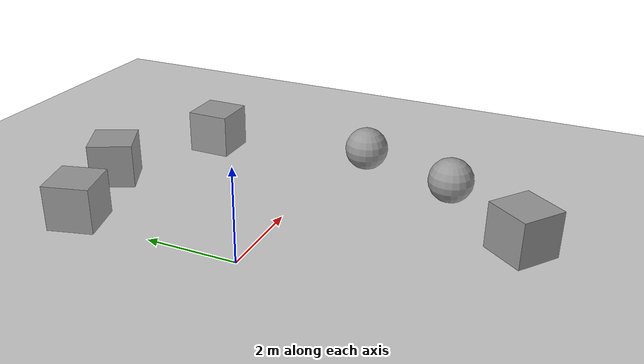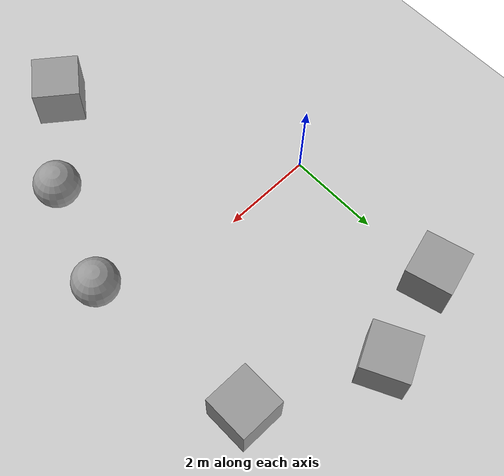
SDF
<sdf version="1.7">
 <world name="default">
  <scene><ambient>0.4 0.4 0.4 1</ambient><background>0.7 0.7 0.7 1</background><shadows>1</shadows></scene>
  <light name="sun" type="directional">
   <pose>0 0 10 0 -0 0</pose>
   <diffuse>0.8 0.8 0.8 1</diffuse>
   <specular>0.2 0.2 0.2 1</specular>
   <attenuation>
    <range>1000</range>
    <constant>0.9</constant>
    <linear>0.01</linear>
    <quadratic>0.001</quadratic>
   </attenuation>
   <direction>-0.5 0.1 -0.9</direction>
   <spot><inner_angle>0</inner_angle><outer_angle>0</outer_angle><falloff>0</falloff></spot>
  </light>
  <model name="ground_plane">
   <static>1</static>
   <link name="link">
    <collision name="collision">
     <geometry><plane><normal>0 0 1</normal><size>100 100</size></plane></geometry>
     <surface>
      <contact><collide_bitmask>65535</collide_bitmask></contact>
      <friction><ode><mu>100</mu><mu2>50</mu2></ode></friction>
     </surface>
    </collision>
    <visual name="visual">
     <cast_shadows>0</cast_shadows>
     <geometry><plane><normal>0 0 1</normal><size>100 100</size></plane></geometry>
     <material>
      <script><uri>file://media/materials/scripts/gazebo.material</uri><name>Gazebo/Grey</name></script>
     </material>
    </visual>
   </link>
  </model>
  <physics type="ode">
   <real_time_update_rate>1000</real_time_update_rate>
   <max_step_size>0.001</max_step_size>
   <real_time_factor>1</real_time_factor>
   <ode>
    <solver>
     <type>quick</type>
     <iters>150</iters>
     <precon_iters>0</precon_iters>
     <sor>1.4</sor>
     <use_dynamic_moi_rescaling>1</use_dynamic_moi_rescaling>
    </solver>
    <constraints>
     <cfm>1e-05</cfm>
     <erp>0.2</erp>
     <contact_max_correcting_vel>2000</contact_max_correcting_vel>
     <contact_surface_layer>0.01</contact_surface_layer>
    </constraints>
   </ode>
  </physics>
  <gravity>0 0 -9.8</gravity>
  <magnetic_field>6e-06 2.3e-05 -4.2e-05</magnetic_field>
  <atmosphere type="adiabatic"/>
  <spherical_coordinates>
   <surface_model>EARTH_WGS84</surface_model>
   <latitude_deg>0</latitude_deg>
   <longitude_deg>0</longitude_deg>
   <elevation>0</elevation>
   <heading_deg>0</heading_deg>
  </spherical_coordinates>
  <light name="user_point_light_0" type="point">
   <pose>-0.048537 -1.88631 1 0 -0 0</pose>
   <diffuse>0.5 0.5 0.5 1</diffuse>
   <specular>0.1 0.1 0.1 1</specular>
   <attenuation>
    <range>20</range>
    <constant>0.5</constant>
    <linear>0.01</linear>
    <quadratic>0.001</quadratic>
   </attenuation>
   <cast_shadows>0</cast_shadows>
   <direction>0 0 -1</direction>
   <spot><inner_angle>0</inner_angle><outer_angle>0</outer_angle><falloff>0</falloff></spot>
  </light>
  <light name="user_point_light_1" type="point">
   <pose>-0.051339 1.13969 1 0 -0 0</pose>
   <diffuse>0.5 0.5 0.5 1</diffuse>
   <specular>0.1 0.1 0.1 1</specular>
   <attenuation>
    <range>20</range>
    <constant>0.5</constant>
    <linear>0.01</linear>
    <quadratic>0.001</quadratic>
   </attenuation>
   <cast_shadows>0</cast_shadows>
   <direction>0 0 -1</direction>
   <spot><inner_angle>0</inner_angle><outer_angle>0</outer_angle><falloff>0</falloff></spot>
  </light>
  <light name="user_point_light_2" type="point">
   <pose>2.81234 1.17902 1 0 -0 0</pose>
   <diffuse>0.5 0.5 0.5 1</diffuse>
   <specular>0.1 0.1 0.1 1</specular>
   <attenuation>
    <range>20</range>
    <constant>0.5</constant>
    <linear>0.01</linear>
    <quadratic>0.001</quadratic>
   </attenuation>
   <cast_shadows>0</cast_shadows>
   <direction>0 0 -1</direction>
   <spot><inner_angle>0</inner_angle><outer_angle>0</outer_angle><falloff>0</falloff></spot>
  </light>
  <light name="user_point_light_3" type="point">
   <pose>3.14136 -2.09119 1 0 -0 0</pose>
   <diffuse>0.5 0.5 0.5 1</diffuse>
   <specular>0.1 0.1 0.1 1</specular>
   <attenuation>
    <range>20</range>
    <constant>0.5</constant>
    <linear>0.01</linear>
    <quadratic>0.001</quadratic>
   </attenuation>
   <cast_shadows>0</cast_shadows>
   <direction>0 0 -1</direction>
   <spot><inner_angle>0</inner_angle><outer_angle>0</outer_angle><falloff>0</falloff></spot>
  </light>
  <light name="user_point_light_4" type="point">
   <pose>1.84898 -0.176029 1 0 -0 0</pose>
   <diffuse>0.5 0.5 0.5 1</diffuse>
   <specular>0.1 0.1 0.1 1</specular>
   <attenuation>
    <range>20</range>
    <constant>0.5</constant>
    <linear>0.01</linear>
    <quadratic>0.001</quadratic>
   </attenuation>
   <cast_shadows>0</cast_shadows>
   <direction>0 0 -1</direction>
   <spot><inner_angle>0</inner_angle><outer_angle>0</outer_angle><falloff>0</falloff></spot>
  </light>
  <light name="user_point_light_5" type="point">
   <pose>-1.66554 0.183176 1 0 -0 0</pose>
   <diffuse>0.5 0.5 0.5 1</diffuse>
   <specular>0.1 0.1 0.1 1</specular>
   <attenuation>
    <range>20</range>
    <constant>0.5</constant>
    <linear>0.01</linear>
    <quadratic>0.001</quadratic>
   </attenuation>
   <cast_shadows>0</cast_shadows>
   <direction>0 0 -1</direction>
   <spot><inner_angle>0</inner_angle><outer_angle>0</outer_angle><falloff>0</falloff></spot>
  </light>
  <light name="user_point_light_6" type="point">
   <pose>0.891989 4.43299 1 0 -0 0</pose>
   <diffuse>0.5 0.5 0.5 1</diffuse>
   <specular>0.1 0.1 0.1 1</specular>
   <attenuation>
    <range>20</range>
    <constant>0.5</constant>
    <linear>0.01</linear>
    <quadratic>0.001</quadratic>
   </attenuation>
   <cast_shadows>0</cast_shadows>
   <direction>0 0 -1</direction>
   <spot><inner_angle>0</inner_angle><outer_angle>0</outer_angle><falloff>0</falloff></spot>
  </light>
  <light name="user_point_light_7" type="point">
   <pose>6.1742 0.415669 1 0 -0 0</pose>
   <diffuse>0.5 0.5 0.5 1</diffuse>
   <specular>0.1 0.1 0.1 1</specular>
   <attenuation>
    <range>20</range>
    <constant>0.5</constant>
    <linear>0.01</linear>
    <quadratic>0.001</quadratic>
   </attenuation>
   <cast_shadows>0</cast_shadows>
   <direction>0 0 -1</direction>
   <spot><inner_angle>0</inner_angle><outer_angle>0</outer_angle><falloff>0</falloff></spot>
  </light>
  <light name="user_point_light_8" type="point">
   <pose>5.07081 2.83277 1 0 -0 0</pose>
   <diffuse>0.5 0.5 0.5 1</diffuse>
   <specular>0.1 0.1 0.1 1</specular>
   <attenuation>
    <range>20</range>
    <constant>0.5</constant>
    <linear>0.01</linear>
    <quadratic>0.001</quadratic>
   </attenuation>
   <cast_shadows>0</cast_shadows>
   <direction>0 0 -1</direction>
   <spot><inner_angle>0</inner_angle><outer_angle>0</outer_angle><falloff>0</falloff></spot>
  </light>
  <light name="user_point_light_9" type="point">
   <pose>3.04243 3.65686 1 0 -0 0</pose>
   <diffuse>0.5 0.5 0.5 1</diffuse>
   <specular>0.1 0.1 0.1 1</specular>
   <attenuation>
    <range>20</range>
    <constant>0.5</constant>
    <linear>0.01</linear>
    <quadratic>0.001</quadratic>
   </attenuation>
   <cast_shadows>0</cast_shadows>
   <direction>0 0 -1</direction>
   <spot><inner_angle>0</inner_angle><outer_angle>0</outer_angle><falloff>0</falloff></spot>
  </light>
  <light name="user_point_light_10" type="point">
   <pose>-1.18616 -1.39401 1 0 -0 0</pose>
   <diffuse>0.5 0.5 0.5 1</diffuse>
   <specular>0.1 0.1 0.1 1</specular>
   <attenuation>
    <range>20</range>
    <constant>0.5</constant>
    <linear>0.01</linear>
    <quadratic>0.001</quadratic>
   </attenuation>
   <cast_shadows>0</cast_shadows>
   <direction>0 0 -1</direction>
   <spot><inner_angle>0</inner_angle><outer_angle>0</outer_angle><falloff>0</falloff></spot>
  </light>
  <light name="user_point_light_11" type="point">
   <pose>-2.78028 2.63321 1 0 -0 0</pose>
   <diffuse>0.5 0.5 0.5 1</diffuse>
   <specular>0.1 0.1 0.1 1</specular>
   <attenuation>
    <range>20</range>
    <constant>0.5</constant>
    <linear>0.01</linear>
    <quadratic>0.001</quadratic>
   </attenuation>
   <cast_shadows>0</cast_shadows>
   <direction>0 0 -1</direction>
   <spot><inner_angle>0</inner_angle><outer_angle>0</outer_angle><falloff>0</falloff></spot>
  </light>
  <model name="unit_box">
   <pose>4.66591 3.08919 0.5 0 -0 0</pose>
   <link name="link">
    <inertial>
     <mass>1</mass>
     <inertia>
      <ixx>0.166667</ixx>
      <ixy>0</ixy>
      <ixz>0</ixz>
      <iyy>0.166667</iyy>
      <iyz>0</iyz>
      <izz>0.166667</izz>
     </inertia>
    </inertial>
    <collision name="collision"><geometry><box><size>1 1 1</size></box></geometry></collision>
    <visual name="visual">
     <geometry><box><size>1 1 1</size></box></geometry>
     <material>
      <script><name>Gazebo/Grey</name><uri>file://media/materials/scripts/gazebo.material</uri></script>
     </material>
    </visual>
   </link>
  </model>
  <model name="unit_box_0">
   <pose>2.05602 4.30102 0.5 0 -0 0.46332</pose>
   <link name="link">
    <inertial>
     <mass>1</mass>
     <inertia>
      <ixx>0.166667</ixx>
      <ixy>0</ixy>
      <ixz>0</ixz>
      <iyy>0.166667</iyy>
      <iyz>0</iyz>
      <izz>0.166667</izz>
     </inertia>
    </inertial>
    <collision name="collision"><geometry><box><size>1 1 1</size></box></geometry></collision>
    <visual name="visual">
     <geometry><box><size>1 1 1</size></box></geometry>
     <material>
      <script><name>Gazebo/Grey</name><uri>file://media/materials/scripts/gazebo.material</uri></script>
     </material>
    </visual>
   </link>
  </model>
  <model name="unit_box_1">
   <pose>2.6942 -4.80738 0.5 -0 -0 -0.651248</pose>
   <link name="link">
    <inertial>
     <mass>1</mass>
     <inertia>
      <ixx>0.166667</ixx>
      <ixy>0</ixy>
      <ixz>0</ixz>
      <iyy>0.166667</iyy>
      <iyz>0</iyz>
      <izz>0.166667</izz>
     </inertia>
    </inertial>
    <collision name="collision"><geometry><box><size>1 1 1</size></box></geometry></collision>
    <visual name="visual">
     <geometry><box><size>1 1 1</size></box></geometry>
     <material>
      <script><name>Gazebo/Grey</name><uri>file://media/materials/scripts/gazebo.material</uri></script>
     </material>
    </visual>
   </link>
  </model>
  <model name="unit_box_2">
   <pose>0.05141 3.73697 0.5 0 -0 0.266999</pose>
   <link name="link">
    <inertial>
     <mass>1</mass>
     <inertia>
      <ixx>0.166667</ixx>
      <ixy>0</ixy>
      <ixz>0</ixz>
      <iyy>0.166667</iyy>
      <iyz>0</iyz>
      <izz>0.166667</izz>
     </inertia>
    </inertial>
    <collision name="collision"><geometry><box><size>1 1 1</size></box></geometry></collision>
    <visual name="visual">
     <geometry><box><size>1 1 1</size></box></geometry>
     <material>
      <script><name>Gazebo/Grey</name><uri>file://media/materials/scripts/gazebo.material</uri></script>
     </material>
    </visual>
   </link>
  </model>
  <model name="unit_sphere">
   <pose>4.20762 -2.99344 0.5 0 -0 0</pose>
   <link name="link">
    <inertial>
     <mass>1</mass>
     <inertia><ixx>0.1</ixx><ixy>0</ixy><ixz>0</ixz><iyy>0.1</iyy><iyz>0</iyz><izz>0.1</izz></inertia>
    </inertial>
    <collision name="collision"><geometry><sphere><radius>0.5</radius></sphere></geometry></collision>
    <visual name="visual">
     <geometry><sphere><radius>0.5</radius></sphere></geometry>
     <material>
      <script><name>Gazebo/Grey</name><uri>file://media/materials/scripts/gazebo.material</uri></script>
     </material>
    </visual>
   </link>
  </model>
  <model name="unit_sphere_0">
   <pose>5.03689 -0.747201 0.5 0 -0 0</pose>
   <link name="link">
    <inertial>
     <mass>1</mass>
     <inertia><ixx>0.1</ixx><ixy>0</ixy><ixz>0</ixz><iyy>0.1</iyy><iyz>0</iyz><izz>0.1</izz></inertia>
    </inertial>
    <collision name="collision"><geometry><sphere><radius>0.5</radius></sphere></geometry></collision>
    <visual name="visual">
     <geometry><sphere><radius>0.5</radius></sphere></geometry>
     <material>
      <script><name>Gazebo/Grey</name><uri>file://media/materials/scripts/gazebo.material</uri></script>
     </material>
    </visual>
   </link>
  </model>
 </world>
</sdf>
